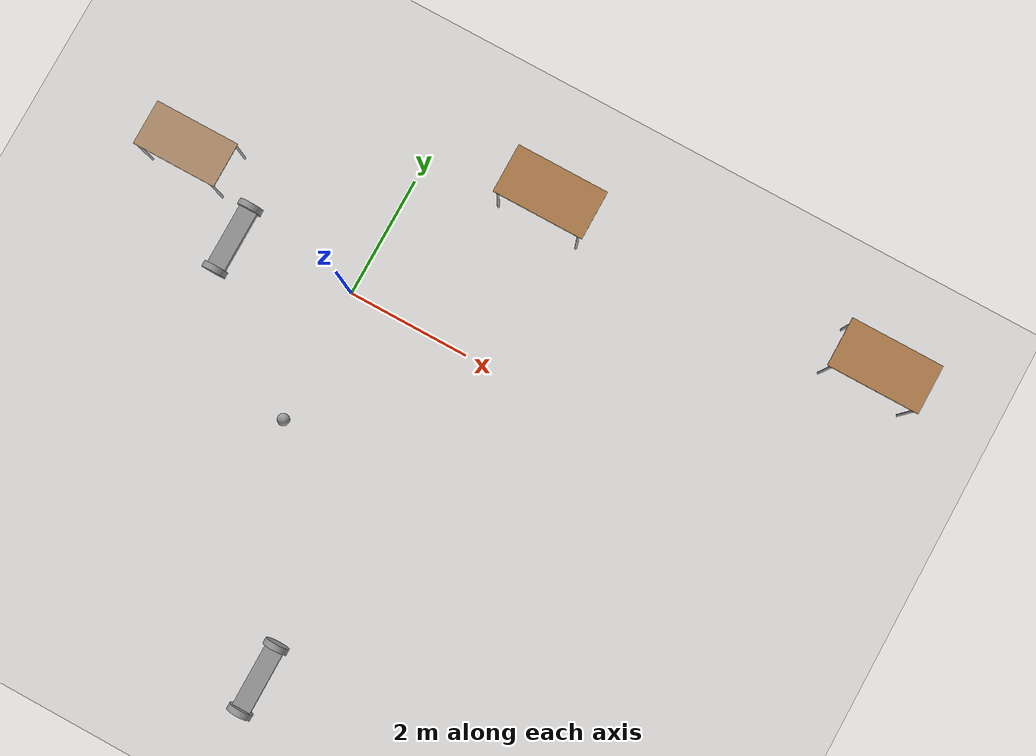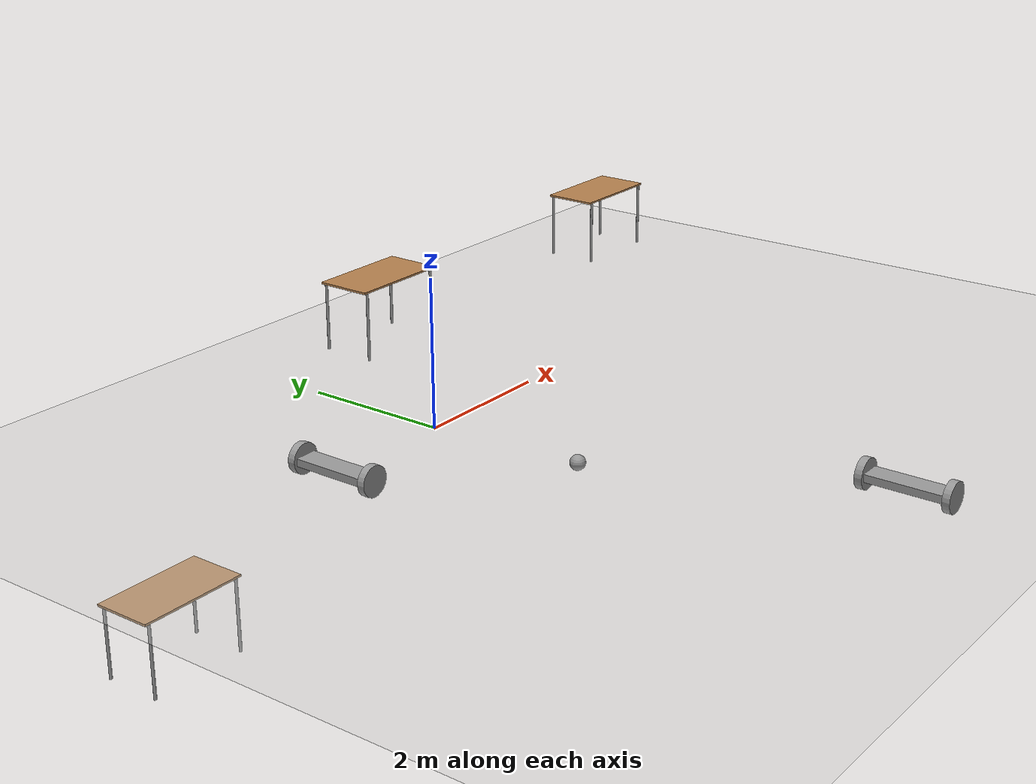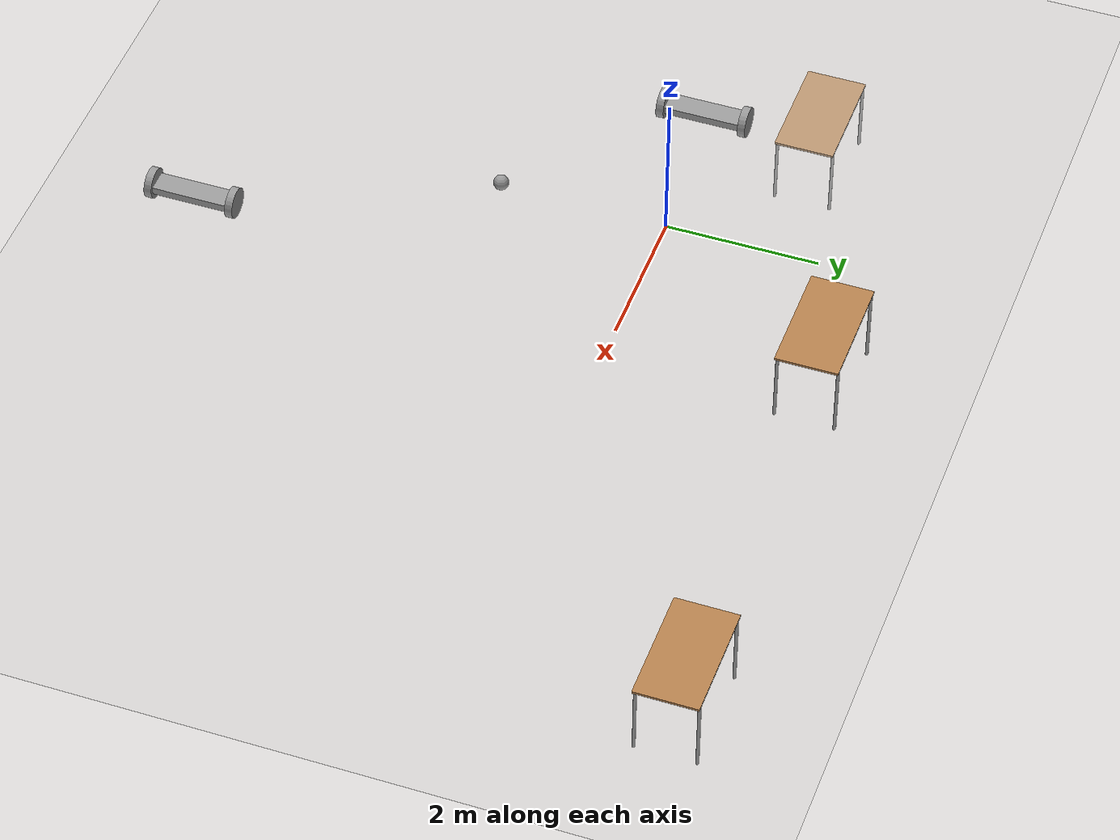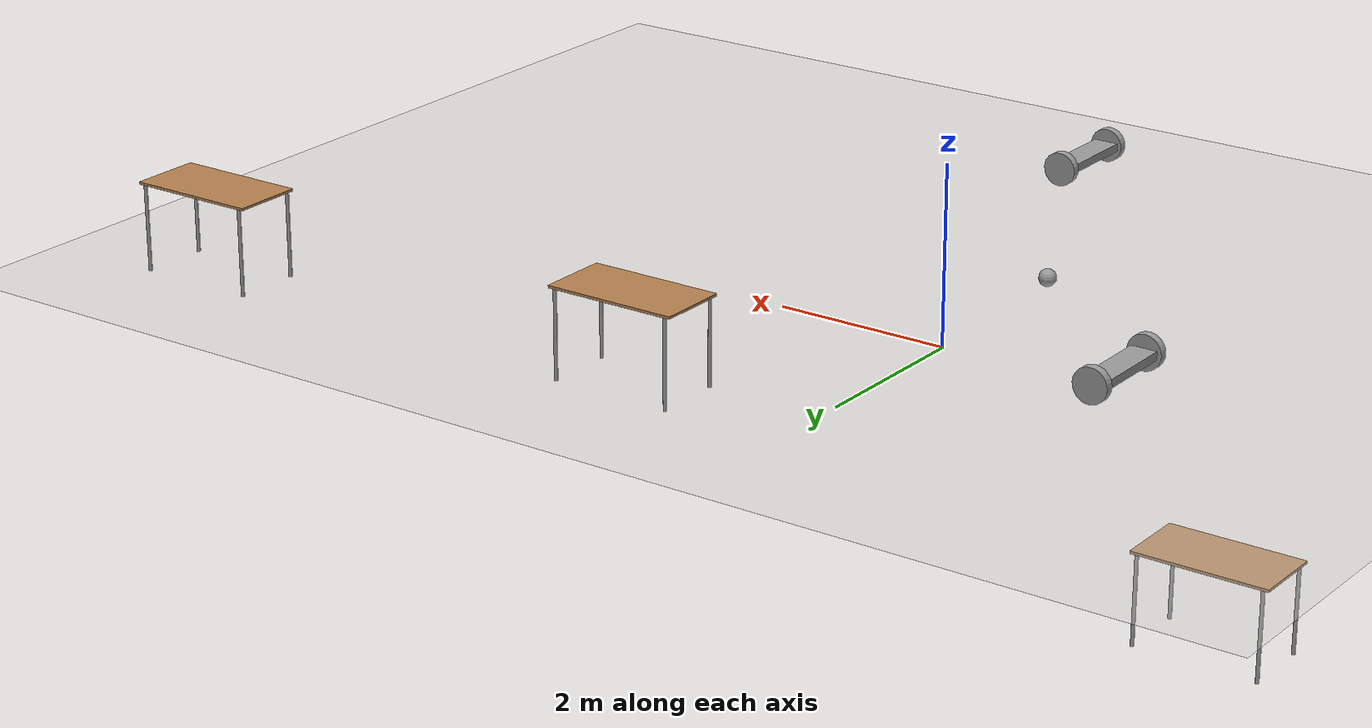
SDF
<sdf version="1.6">
 <world name="default">
  <model name="ground_plane">
   <static>1</static>
   <link name="link">
    <collision name="collision">
     <geometry><plane><normal>0 0 1</normal><size>100 100</size></plane></geometry>
     <surface>
      <contact><collide_bitmask>65535</collide_bitmask></contact>
      <friction><ode><mu>100</mu><mu2>50</mu2></ode></friction>
     </surface>
    </collision>
    <visual name="visual">
     <cast_shadows>0</cast_shadows>
     <geometry><plane><normal>0 0 1</normal><size>100 100</size></plane></geometry>
     <material>
      <script><uri>file://media/materials/scripts/gazebo.material</uri><name>Gazebo/Grey</name></script>
     </material>
    </visual>
   </link>
  </model>
  <model name="table">
   <static>1</static>
   <link name="link">
    <collision name="surface">
     <pose>0 0 1 0 -0 0</pose>
     <geometry><box><size>1.5 0.8 0.03</size></box></geometry>
     <surface><friction><ode><mu>0.6</mu><mu2>0.6</mu2></ode></friction></surface>
    </collision>
    <visual name="visual1">
     <pose>0 0 1 0 -0 0</pose>
     <geometry><box><size>1.5 0.8 0.03</size></box></geometry>
     <material>
      <script><uri>file://media/materials/scripts/gazebo.material</uri><name>Gazebo/Wood</name></script>
     </material>
    </visual>
    <collision name="front_left_leg">
     <pose>0.68 0.38 0.5 0 -0 0</pose>
     <geometry><cylinder><radius>0.02</radius><length>1</length></cylinder></geometry>
    </collision>
    <visual name="front_left_leg">
     <pose>0.68 0.38 0.5 0 -0 0</pose>
     <geometry><cylinder><radius>0.02</radius><length>1</length></cylinder></geometry>
     <material>
      <script><uri>file://media/materials/scripts/gazebo.material</uri><name>Gazebo/Grey</name></script>
     </material>
    </visual>
    <collision name="front_right_leg">
     <pose>0.68 -0.38 0.5 0 -0 0</pose>
     <geometry><cylinder><radius>0.02</radius><length>1</length></cylinder></geometry>
    </collision>
    <visual name="front_right_leg">
     <pose>0.68 -0.38 0.5 0 -0 0</pose>
     <geometry><cylinder><radius>0.02</radius><length>1</length></cylinder></geometry>
     <material>
      <script><uri>file://media/materials/scripts/gazebo.material</uri><name>Gazebo/Grey</name></script>
     </material>
    </visual>
    <collision name="back_right_leg">
     <pose>-0.68 -0.38 0.5 0 -0 0</pose>
     <geometry><cylinder><radius>0.02</radius><length>1</length></cylinder></geometry>
    </collision>
    <visual name="back_right_leg">
     <pose>-0.68 -0.38 0.5 0 -0 0</pose>
     <geometry><cylinder><radius>0.02</radius><length>1</length></cylinder></geometry>
     <material>
      <script><uri>file://media/materials/scripts/gazebo.material</uri><name>Gazebo/Grey</name></script>
     </material>
    </visual>
    <collision name="back_left_leg">
     <pose>-0.68 0.38 0.5 0 -0 0</pose>
     <geometry><cylinder><radius>0.02</radius><length>1</length></cylinder></geometry>
    </collision>
    <visual name="back_left_leg">
     <pose>-0.68 0.38 0.5 0 -0 0</pose>
     <geometry><cylinder><radius>0.02</radius><length>1</length></cylinder></geometry>
     <material>
      <script><uri>file://media/materials/scripts/gazebo.material</uri><name>Gazebo/Grey</name></script>
     </material>
    </visual>
   </link>
   <pose>-3.74205 0.928793 -2.00248 0 -0 0</pose>
  </model>
  <model name="new_ball">
   <link name="link_0">
    <inertial>
     <mass>1</mass>
     <inertia><ixx>0.1</ixx><ixy>0</ixy><ixz>0</ixz><iyy>0.1</iyy><iyz>0</iyz><izz>0.1</izz></inertia>
    </inertial>
    <visual name="visual">
     <geometry><sphere><radius>0.1</radius></sphere></geometry>
     <material>
      <lighting>1</lighting>
      <script><uri>file://media/materials/scripts/gazebo.material</uri><name>Gazebo/Grey</name></script>
      <shader type="pixel"><normal_map>__default__</normal_map></shader>
      <ambient>1 1 1 1</ambient>
      <diffuse>1 1 1 1</diffuse>
      <specular>1 1 1 1</specular>
      <emissive>1 1 1 1</emissive>
     </material>
    </visual>
    <collision name="collision">
     <geometry><sphere><radius>0.1</radius></sphere></geometry>
     <surface>
      <friction>
       <ode><mu>1</mu><mu2>1</mu2><fdir1>0 0 0</fdir1><slip1>0</slip1><slip2>0</slip2></ode>
       <torsional>
        <coefficient>1</coefficient>
        <patch_radius>0</patch_radius>
        <surface_radius>0</surface_radius>
        <use_patch_radius>1</use_patch_radius>
        <ode><slip>0</slip></ode>
       </torsional>
      </friction>
      <bounce><restitution_coefficient>0</restitution_coefficient><threshold>1e+06</threshold></bounce>
      <contact>
       <collide_without_contact>0</collide_without_contact>
       <collide_without_contact_bitmask>1</collide_without_contact_bitmask>
       <collide_bitmask>1</collide_bitmask>
       <ode>
        <soft_cfm>0</soft_cfm>
        <soft_erp>0.2</soft_erp>
        <kp>1e+13</kp>
        <kd>1</kd>
        <max_vel>0.01</max_vel>
        <min_depth>0</min_depth>
       </ode>
       <bullet>
        <split_impulse>1</split_impulse>
        <split_impulse_penetration_threshold>-0.01</split_impulse_penetration_threshold>
        <soft_cfm>0</soft_cfm>
        <soft_erp>0.2</soft_erp>
        <kp>1e+13</kp>
        <kd>1</kd>
       </bullet>
      </contact>
     </surface>
    </collision>
   </link>
   <static>0</static>
   <pose>0.046076 -2.19819 0.1 0 -0 0</pose>
  </model>
  <model name="robot2wheels">
   <link name="link_0">
    <inertial>
     <mass>1</mass>
     <inertia>
      <ixx>0.166667</ixx>
      <ixy>0</ixy>
      <ixz>0</ixz>
      <iyy>0.166667</iyy>
      <iyz>0</iyz>
      <izz>0.166667</izz>
     </inertia>
    </inertial>
    <visual name="visual">
     <geometry><box><size>0.3 1 0.1</size></box></geometry>
     <material>
      <lighting>1</lighting>
      <script><uri>file://media/materials/scripts/gazebo.material</uri><name>Gazebo/Grey</name></script>
      <shader type="pixel"><normal_map>__default__</normal_map></shader>
      <ambient>0.3 0.3 0.3 1</ambient>
      <diffuse>0.7 0.7 0.7 1</diffuse>
      <specular>0.01 0.01 0.01 1</specular>
      <emissive>0 0 0 1</emissive>
     </material>
    </visual>
    <collision name="collision">
     <geometry><box><size>0.3 1 0.1</size></box></geometry>
     <surface>
      <friction>
       <ode><mu>1</mu><mu2>1</mu2><fdir1>0 0 0</fdir1><slip1>0</slip1><slip2>0</slip2></ode>
       <torsional>
        <coefficient>1</coefficient>
        <patch_radius>0</patch_radius>
        <surface_radius>0</surface_radius>
        <use_patch_radius>1</use_patch_radius>
        <ode><slip>0</slip></ode>
       </torsional>
      </friction>
      <bounce><restitution_coefficient>0</restitution_coefficient><threshold>1e+06</threshold></bounce>
      <contact>
       <collide_without_contact>0</collide_without_contact>
       <collide_without_contact_bitmask>1</collide_without_contact_bitmask>
       <collide_bitmask>1</collide_bitmask>
       <ode>
        <soft_cfm>0</soft_cfm>
        <soft_erp>0.2</soft_erp>
        <kp>1e+13</kp>
        <kd>1</kd>
        <max_vel>0.01</max_vel>
        <min_depth>0</min_depth>
       </ode>
       <bullet>
        <split_impulse>1</split_impulse>
        <split_impulse_penetration_threshold>-0.01</split_impulse_penetration_threshold>
        <soft_cfm>0</soft_cfm>
        <soft_erp>0.2</soft_erp>
        <kp>1e+13</kp>
        <kd>1</kd>
       </bullet>
      </contact>
     </surface>
    </collision>
   </link>
   <link name="link_1">
    <inertial>
     <mass>1</mass>
     <inertia><ixx>0.145833</ixx><ixy>0</ixy><ixz>0</ixz><iyy>0.145833</iyy><iyz>0</iyz><izz>0.125</izz></inertia>
    </inertial>
    <pose>0 -0.550019 0 1.5707 -0 0</pose>
    <visual name="visual">
     <geometry><cylinder><radius>0.2</radius><length>0.1</length></cylinder></geometry>
     <material>
      <lighting>1</lighting>
      <script><uri>file://media/materials/scripts/gazebo.material</uri><name>Gazebo/Grey</name></script>
      <shader type="pixel"><normal_map>__default__</normal_map></shader>
      <ambient>0.3 0.3 0.3 1</ambient>
      <diffuse>0.7 0.7 0.7 1</diffuse>
      <specular>0.01 0.01 0.01 1</specular>
      <emissive>0 0 0 1</emissive>
     </material>
    </visual>
    <collision name="collision">
     <geometry><cylinder><radius>0.2</radius><length>0.1</length></cylinder></geometry>
     <surface>
      <friction>
       <ode><mu>1</mu><mu2>1</mu2><fdir1>0 0 0</fdir1><slip1>0</slip1><slip2>0</slip2></ode>
       <torsional>
        <coefficient>1</coefficient>
        <patch_radius>0</patch_radius>
        <surface_radius>0</surface_radius>
        <use_patch_radius>1</use_patch_radius>
        <ode><slip>0</slip></ode>
       </torsional>
      </friction>
      <bounce><restitution_coefficient>0</restitution_coefficient><threshold>1e+06</threshold></bounce>
      <contact>
       <collide_without_contact>0</collide_without_contact>
       <collide_without_contact_bitmask>1</collide_without_contact_bitmask>
       <collide_bitmask>1</collide_bitmask>
       <ode>
        <soft_cfm>0</soft_cfm>
        <soft_erp>0.2</soft_erp>
        <kp>1e+13</kp>
        <kd>1</kd>
        <max_vel>0.01</max_vel>
        <min_depth>0</min_depth>
       </ode>
       <bullet>
        <split_impulse>1</split_impulse>
        <split_impulse_penetration_threshold>-0.01</split_impulse_penetration_threshold>
        <soft_cfm>0</soft_cfm>
        <soft_erp>0.2</soft_erp>
        <kp>1e+13</kp>
        <kd>1</kd>
       </bullet>
      </contact>
     </surface>
    </collision>
   </link>
   <link name="link_1_clone">
    <inertial>
     <mass>1</mass>
     <inertia><ixx>0.145833</ixx><ixy>0</ixy><ixz>0</ixz><iyy>0.145833</iyy><iyz>0</iyz><izz>0.125</izz></inertia>
    </inertial>
    <pose>0 0.550019 0 1.5707 -0 0</pose>
    <visual name="visual">
     <geometry><cylinder><radius>0.2</radius><length>0.1</length></cylinder></geometry>
     <material>
      <lighting>1</lighting>
      <script><uri>file://media/materials/scripts/gazebo.material</uri><name>Gazebo/Grey</name></script>
      <shader type="pixel"><normal_map>__default__</normal_map></shader>
      <ambient>0.3 0.3 0.3 1</ambient>
      <diffuse>0.7 0.7 0.7 1</diffuse>
      <specular>0.01 0.01 0.01 1</specular>
      <emissive>0 0 0 1</emissive>
     </material>
    </visual>
    <collision name="collision">
     <geometry><cylinder><radius>0.2</radius><length>0.1</length></cylinder></geometry>
     <surface>
      <friction>
       <ode><mu>1</mu><mu2>1</mu2><fdir1>0 0 0</fdir1><slip1>0</slip1><slip2>0</slip2></ode>
       <torsional>
        <coefficient>1</coefficient>
        <patch_radius>0</patch_radius>
        <surface_radius>0</surface_radius>
        <use_patch_radius>1</use_patch_radius>
        <ode><slip>0</slip></ode>
       </torsional>
      </friction>
      <bounce><restitution_coefficient>0</restitution_coefficient><threshold>1e+06</threshold></bounce>
      <contact>
       <collide_without_contact>0</collide_without_contact>
       <collide_without_contact_bitmask>1</collide_without_contact_bitmask>
       <collide_bitmask>1</collide_bitmask>
       <ode>
        <soft_cfm>0</soft_cfm>
        <soft_erp>0.2</soft_erp>
        <kp>1e+13</kp>
        <kd>1</kd>
        <max_vel>0.01</max_vel>
        <min_depth>0</min_depth>
       </ode>
       <bullet>
        <split_impulse>1</split_impulse>
        <split_impulse_penetration_threshold>-0.01</split_impulse_penetration_threshold>
        <soft_cfm>0</soft_cfm>
        <soft_erp>0.2</soft_erp>
        <kp>1e+13</kp>
        <kd>1</kd>
       </bullet>
      </contact>
     </surface>
    </collision>
   </link>
   <joint name="link_0_JOINT_0" type="revolute">
    <parent>link_0</parent>
    <child>link_1</child>
    <axis>
     <xyz>0 0 1</xyz>
     <use_parent_model_frame>0</use_parent_model_frame>
     <limit>
      <lower>-1.79769e+308</lower>
      <upper>1.79769e+308</upper>
      <effort>-1</effort>
      <velocity>-1</velocity>
     </limit>
     <dynamics>
      <spring_reference>0</spring_reference>
      <spring_stiffness>0</spring_stiffness>
      <damping>0</damping>
     </dynamics>
    </axis>
    <physics>
     <ode><limit><cfm>0</cfm><erp>0.2</erp></limit><suspension><cfm>0</cfm><erp>0.2</erp></suspension></ode>
    </physics>
   </joint>
   <joint name="link_0_JOINT_1" type="revolute">
    <parent>link_0</parent>
    <child>link_1_clone</child>
    <axis>
     <xyz>0 0 1</xyz>
     <use_parent_model_frame>0</use_parent_model_frame>
     <limit>
      <lower>-1.79769e+308</lower>
      <upper>1.79769e+308</upper>
      <effort>-1</effort>
      <velocity>-1</velocity>
     </limit>
     <dynamics>
      <spring_reference>0</spring_reference>
      <spring_stiffness>0</spring_stiffness>
      <damping>0</damping>
     </dynamics>
    </axis>
    <physics>
     <ode><limit><cfm>0</cfm><erp>0.2</erp></limit><suspension><cfm>0</cfm><erp>0.2</erp></suspension></ode>
    </physics>
   </joint>
   <static>0</static>
   <pose>1.63819 -5.75953 0.200002 4e-06 -0.000446 0.000155</pose>
  </model>
  <model name="robot2wheels_0">
   <link name="link_0">
    <inertial>
     <mass>1</mass>
     <inertia>
      <ixx>0.166667</ixx>
      <ixy>0</ixy>
      <ixz>0</ixz>
      <iyy>0.166667</iyy>
      <iyz>0</iyz>
      <izz>0.166667</izz>
     </inertia>
    </inertial>
    <visual name="visual">
     <geometry><box><size>0.3 1 0.1</size></box></geometry>
     <material>
      <lighting>1</lighting>
      <script><uri>file://media/materials/scripts/gazebo.material</uri><name>Gazebo/Grey</name></script>
      <shader type="pixel"><normal_map>__default__</normal_map></shader>
      <ambient>0.3 0.3 0.3 1</ambient>
      <diffuse>0.7 0.7 0.7 1</diffuse>
      <specular>0.01 0.01 0.01 1</specular>
      <emissive>0 0 0 1</emissive>
     </material>
    </visual>
    <collision name="collision">
     <geometry><box><size>0.3 1 0.1</size></box></geometry>
     <surface>
      <friction>
       <ode><mu>1</mu><mu2>1</mu2><fdir1>0 0 0</fdir1><slip1>0</slip1><slip2>0</slip2></ode>
       <torsional>
        <coefficient>1</coefficient>
        <patch_radius>0</patch_radius>
        <surface_radius>0</surface_radius>
        <use_patch_radius>1</use_patch_radius>
        <ode><slip>0</slip></ode>
       </torsional>
      </friction>
      <bounce><restitution_coefficient>0</restitution_coefficient><threshold>1e+06</threshold></bounce>
      <contact>
       <collide_without_contact>0</collide_without_contact>
       <collide_without_contact_bitmask>1</collide_without_contact_bitmask>
       <collide_bitmask>1</collide_bitmask>
       <ode>
        <soft_cfm>0</soft_cfm>
        <soft_erp>0.2</soft_erp>
        <kp>1e+13</kp>
        <kd>1</kd>
        <max_vel>0.01</max_vel>
        <min_depth>0</min_depth>
       </ode>
       <bullet>
        <split_impulse>1</split_impulse>
        <split_impulse_penetration_threshold>-0.01</split_impulse_penetration_threshold>
        <soft_cfm>0</soft_cfm>
        <soft_erp>0.2</soft_erp>
        <kp>1e+13</kp>
        <kd>1</kd>
       </bullet>
      </contact>
     </surface>
    </collision>
   </link>
   <link name="link_1">
    <inertial>
     <mass>1</mass>
     <inertia><ixx>0.145833</ixx><ixy>0</ixy><ixz>0</ixz><iyy>0.145833</iyy><iyz>0</iyz><izz>0.125</izz></inertia>
    </inertial>
    <pose>0 -0.550019 0 1.5707 -0 0</pose>
    <visual name="visual">
     <geometry><cylinder><radius>0.2</radius><length>0.1</length></cylinder></geometry>
     <material>
      <lighting>1</lighting>
      <script><uri>file://media/materials/scripts/gazebo.material</uri><name>Gazebo/Grey</name></script>
      <shader type="pixel"><normal_map>__default__</normal_map></shader>
      <ambient>0.3 0.3 0.3 1</ambient>
      <diffuse>0.7 0.7 0.7 1</diffuse>
      <specular>0.01 0.01 0.01 1</specular>
      <emissive>0 0 0 1</emissive>
     </material>
    </visual>
    <collision name="collision">
     <geometry><cylinder><radius>0.2</radius><length>0.1</length></cylinder></geometry>
     <surface>
      <friction>
       <ode><mu>1</mu><mu2>1</mu2><fdir1>0 0 0</fdir1><slip1>0</slip1><slip2>0</slip2></ode>
       <torsional>
        <coefficient>1</coefficient>
        <patch_radius>0</patch_radius>
        <surface_radius>0</surface_radius>
        <use_patch_radius>1</use_patch_radius>
        <ode><slip>0</slip></ode>
       </torsional>
      </friction>
      <bounce><restitution_coefficient>0</restitution_coefficient><threshold>1e+06</threshold></bounce>
      <contact>
       <collide_without_contact>0</collide_without_contact>
       <collide_without_contact_bitmask>1</collide_without_contact_bitmask>
       <collide_bitmask>1</collide_bitmask>
       <ode>
        <soft_cfm>0</soft_cfm>
        <soft_erp>0.2</soft_erp>
        <kp>1e+13</kp>
        <kd>1</kd>
        <max_vel>0.01</max_vel>
        <min_depth>0</min_depth>
       </ode>
       <bullet>
        <split_impulse>1</split_impulse>
        <split_impulse_penetration_threshold>-0.01</split_impulse_penetration_threshold>
        <soft_cfm>0</soft_cfm>
        <soft_erp>0.2</soft_erp>
        <kp>1e+13</kp>
        <kd>1</kd>
       </bullet>
      </contact>
     </surface>
    </collision>
   </link>
   <link name="link_1_clone">
    <inertial>
     <mass>1</mass>
     <inertia><ixx>0.145833</ixx><ixy>0</ixy><ixz>0</ixz><iyy>0.145833</iyy><iyz>0</iyz><izz>0.125</izz></inertia>
    </inertial>
    <pose>0 0.550019 0 1.5707 -0 0</pose>
    <visual name="visual">
     <geometry><cylinder><radius>0.2</radius><length>0.1</length></cylinder></geometry>
     <material>
      <lighting>1</lighting>
      <script><uri>file://media/materials/scripts/gazebo.material</uri><name>Gazebo/Grey</name></script>
      <shader type="pixel"><normal_map>__default__</normal_map></shader>
      <ambient>0.3 0.3 0.3 1</ambient>
      <diffuse>0.7 0.7 0.7 1</diffuse>
      <specular>0.01 0.01 0.01 1</specular>
      <emissive>0 0 0 1</emissive>
     </material>
    </visual>
    <collision name="collision">
     <geometry><cylinder><radius>0.2</radius><length>0.1</length></cylinder></geometry>
     <surface>
      <friction>
       <ode><mu>1</mu><mu2>1</mu2><fdir1>0 0 0</fdir1><slip1>0</slip1><slip2>0</slip2></ode>
       <torsional>
        <coefficient>1</coefficient>
        <patch_radius>0</patch_radius>
        <surface_radius>0</surface_radius>
        <use_patch_radius>1</use_patch_radius>
        <ode><slip>0</slip></ode>
       </torsional>
      </friction>
      <bounce><restitution_coefficient>0</restitution_coefficient><threshold>1e+06</threshold></bounce>
      <contact>
       <collide_without_contact>0</collide_without_contact>
       <collide_without_contact_bitmask>1</collide_without_contact_bitmask>
       <collide_bitmask>1</collide_bitmask>
       <ode>
        <soft_cfm>0</soft_cfm>
        <soft_erp>0.2</soft_erp>
        <kp>1e+13</kp>
        <kd>1</kd>
        <max_vel>0.01</max_vel>
        <min_depth>0</min_depth>
       </ode>
       <bullet>
        <split_impulse>1</split_impulse>
        <split_impulse_penetration_threshold>-0.01</split_impulse_penetration_threshold>
        <soft_cfm>0</soft_cfm>
        <soft_erp>0.2</soft_erp>
        <kp>1e+13</kp>
        <kd>1</kd>
       </bullet>
      </contact>
     </surface>
    </collision>
   </link>
   <joint name="link_0_JOINT_0" type="revolute">
    <parent>link_0</parent>
    <child>link_1</child>
    <axis>
     <xyz>0 0 1</xyz>
     <use_parent_model_frame>0</use_parent_model_frame>
     <limit>
      <lower>-1.79769e+308</lower>
      <upper>1.79769e+308</upper>
      <effort>-1</effort>
      <velocity>-1</velocity>
     </limit>
     <dynamics>
      <spring_reference>0</spring_reference>
      <spring_stiffness>0</spring_stiffness>
      <damping>0</damping>
     </dynamics>
    </axis>
    <physics>
     <ode><limit><cfm>0</cfm><erp>0.2</erp></limit><suspension><cfm>0</cfm><erp>0.2</erp></suspension></ode>
    </physics>
   </joint>
   <joint name="link_0_JOINT_1" type="revolute">
    <parent>link_0</parent>
    <child>link_1_clone</child>
    <axis>
     <xyz>0 0 1</xyz>
     <use_parent_model_frame>0</use_parent_model_frame>
     <limit>
      <lower>-1.79769e+308</lower>
      <upper>1.79769e+308</upper>
      <effort>-1</effort>
      <velocity>-1</velocity>
     </limit>
     <dynamics>
      <spring_reference>0</spring_reference>
      <spring_stiffness>0</spring_stiffness>
      <damping>0</damping>
     </dynamics>
    </axis>
    <physics>
     <ode><limit><cfm>0</cfm><erp>0.2</erp></limit><suspension><cfm>0</cfm><erp>0.2</erp></suspension></ode>
    </physics>
   </joint>
   <static>0</static>
   <pose>-1.98612 -0.147827 0.200005 0 -0.000365 0.00014</pose>
  </model>
  <model name="table_0">
   <static>1</static>
   <link name="link">
    <collision name="surface">
     <pose>0 0 1 0 -0 0</pose>
     <geometry><box><size>1.5 0.8 0.03</size></box></geometry>
     <surface><friction><ode><mu>0.6</mu><mu2>0.6</mu2></ode></friction></surface>
    </collision>
    <visual name="visual1">
     <pose>0 0 1 0 -0 0</pose>
     <geometry><box><size>1.5 0.8 0.03</size></box></geometry>
     <material>
      <script><uri>file://media/materials/scripts/gazebo.material</uri><name>Gazebo/Wood</name></script>
     </material>
    </visual>
    <collision name="front_left_leg">
     <pose>0.68 0.38 0.5 0 -0 0</pose>
     <geometry><cylinder><radius>0.02</radius><length>1</length></cylinder></geometry>
    </collision>
    <visual name="front_left_leg">
     <pose>0.68 0.38 0.5 0 -0 0</pose>
     <geometry><cylinder><radius>0.02</radius><length>1</length></cylinder></geometry>
     <material>
      <script><uri>file://media/materials/scripts/gazebo.material</uri><name>Gazebo/Grey</name></script>
     </material>
    </visual>
    <collision name="front_right_leg">
     <pose>0.68 -0.38 0.5 0 -0 0</pose>
     <geometry><cylinder><radius>0.02</radius><length>1</length></cylinder></geometry>
    </collision>
    <visual name="front_right_leg">
     <pose>0.68 -0.38 0.5 0 -0 0</pose>
     <geometry><cylinder><radius>0.02</radius><length>1</length></cylinder></geometry>
     <material>
      <script><uri>file://media/materials/scripts/gazebo.material</uri><name>Gazebo/Grey</name></script>
     </material>
    </visual>
    <collision name="back_right_leg">
     <pose>-0.68 -0.38 0.5 0 -0 0</pose>
     <geometry><cylinder><radius>0.02</radius><length>1</length></cylinder></geometry>
    </collision>
    <visual name="back_right_leg">
     <pose>-0.68 -0.38 0.5 0 -0 0</pose>
     <geometry><cylinder><radius>0.02</radius><length>1</length></cylinder></geometry>
     <material>
      <script><uri>file://media/materials/scripts/gazebo.material</uri><name>Gazebo/Grey</name></script>
     </material>
    </visual>
    <collision name="back_left_leg">
     <pose>-0.68 0.38 0.5 0 -0 0</pose>
     <geometry><cylinder><radius>0.02</radius><length>1</length></cylinder></geometry>
    </collision>
    <visual name="back_left_leg">
     <pose>-0.68 0.38 0.5 0 -0 0</pose>
     <geometry><cylinder><radius>0.02</radius><length>1</length></cylinder></geometry>
     <material>
      <script><uri>file://media/materials/scripts/gazebo.material</uri><name>Gazebo/Grey</name></script>
     </material>
    </visual>
   </link>
   <pose>2.00486 2.65556 0 0 -0 0</pose>
  </model>
  <model name="table_1">
   <static>1</static>
   <link name="link">
    <collision name="surface">
     <pose>0 0 1 0 -0 0</pose>
     <geometry><box><size>1.5 0.8 0.03</size></box></geometry>
     <surface><friction><ode><mu>0.6</mu><mu2>0.6</mu2></ode></friction></surface>
    </collision>
    <visual name="visual1">
     <pose>0 0 1 0 -0 0</pose>
     <geometry><box><size>1.5 0.8 0.03</size></box></geometry>
     <material>
      <script><uri>file://media/materials/scripts/gazebo.material</uri><name>Gazebo/Wood</name></script>
     </material>
    </visual>
    <collision name="front_left_leg">
     <pose>0.68 0.38 0.5 0 -0 0</pose>
     <geometry><cylinder><radius>0.02</radius><length>1</length></cylinder></geometry>
    </collision>
    <visual name="front_left_leg">
     <pose>0.68 0.38 0.5 0 -0 0</pose>
     <geometry><cylinder><radius>0.02</radius><length>1</length></cylinder></geometry>
     <material>
      <script><uri>file://media/materials/scripts/gazebo.material</uri><name>Gazebo/Grey</name></script>
     </material>
    </visual>
    <collision name="front_right_leg">
     <pose>0.68 -0.38 0.5 0 -0 0</pose>
     <geometry><cylinder><radius>0.02</radius><length>1</length></cylinder></geometry>
    </collision>
    <visual name="front_right_leg">
     <pose>0.68 -0.38 0.5 0 -0 0</pose>
     <geometry><cylinder><radius>0.02</radius><length>1</length></cylinder></geometry>
     <material>
      <script><uri>file://media/materials/scripts/gazebo.material</uri><name>Gazebo/Grey</name></script>
     </material>
    </visual>
    <collision name="back_right_leg">
     <pose>-0.68 -0.38 0.5 0 -0 0</pose>
     <geometry><cylinder><radius>0.02</radius><length>1</length></cylinder></geometry>
    </collision>
    <visual name="back_right_leg">
     <pose>-0.68 -0.38 0.5 0 -0 0</pose>
     <geometry><cylinder><radius>0.02</radius><length>1</length></cylinder></geometry>
     <material>
      <script><uri>file://media/materials/scripts/gazebo.material</uri><name>Gazebo/Grey</name></script>
     </material>
    </visual>
    <collision name="back_left_leg">
     <pose>-0.68 0.38 0.5 0 -0 0</pose>
     <geometry><cylinder><radius>0.02</radius><length>1</length></cylinder></geometry>
    </collision>
    <visual name="back_left_leg">
     <pose>-0.68 0.38 0.5 0 -0 0</pose>
     <geometry><cylinder><radius>0.02</radius><length>1</length></cylinder></geometry>
     <material>
      <script><uri>file://media/materials/scripts/gazebo.material</uri><name>Gazebo/Grey</name></script>
     </material>
    </visual>
   </link>
   <pose>7.5487 2.7384 0 0 -0 0</pose>
  </model>
 </world>
</sdf>
